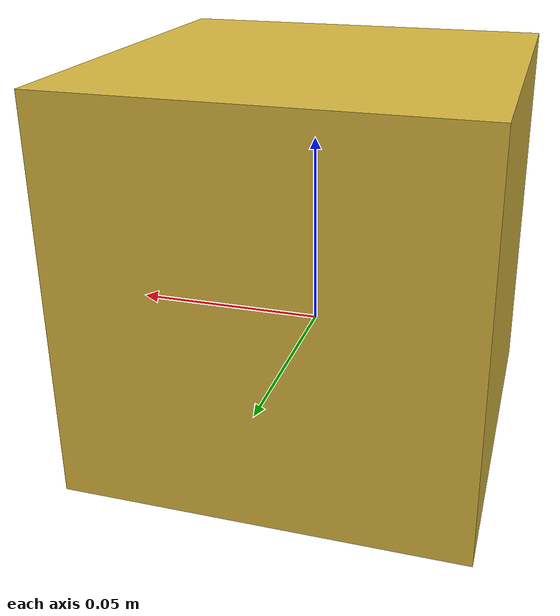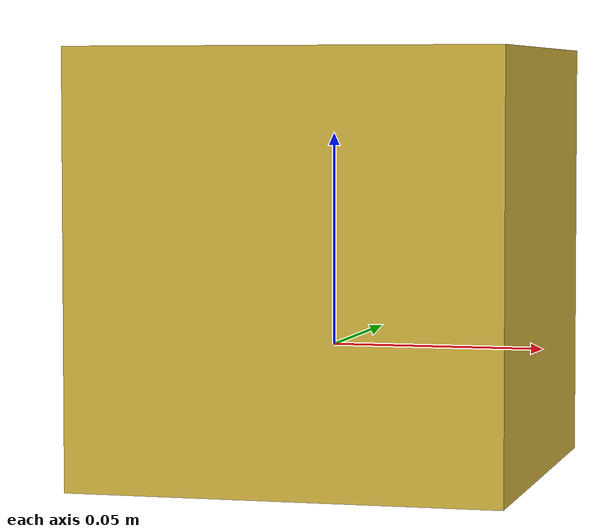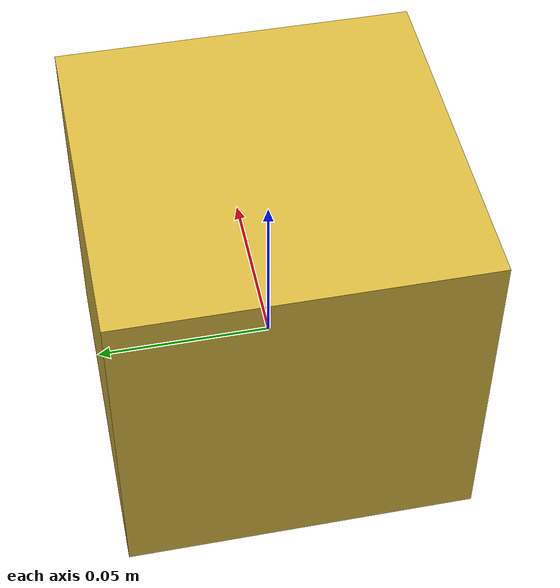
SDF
<?xml version='1.0'?>
<sdf version='1.9'>
  <model name='parcel0'>
   <static>false</static>
    <!-- Add a base link (can be minimal) -->
    <link name='base_link'>
      <inertial>
        <mass>0.001</mass>
        <inertia>
          <ixx>1e-9</ixx>
          <ixy>0</ixy>
          <ixz>0</ixz>
          <iyy>1e-9</iyy>
          <iyz>0</iyz>
          <izz>1e-9</izz>
        </inertia>
      </inertial>
      <!-- Optional: Add a small visual/collision for the base if needed -->
    </link>

    <link name='link'>
    <pose>0.0 0.0 0.02 0.0 0.0 0</pose>
      <!-- Correct physical properties for 0.1m x 0.1m x 0.1m cube with mass 0.1kg -->
      <inertial>
        <mass>0.2</mass>
        <inertia>
          <!-- For a cube: I = (1/12) * m * (a² + b²) where a,b are the other two dimensions -->
          <!-- For 0.1m cube: Ixx = Iyy = Izz = (1/12) * 0.1 * (0.1² + 0.1²) = 0.000167 -->
          <ixx>0.000333</ixx>
          <ixy>0.0</ixy>
          <ixz>0.0</ixz>
          <iyy>0.000333</iyy>
          <iyz>0.0</iyz>
          <izz>0.000333</izz>
        </inertia>
      </inertial>

      <!-- 视觉表现配置 -->
      <visual name='visual'>
        <geometry>
          <box>
            <size>0.1 0.1 0.1</size>
          </box>
        </geometry>
        <material>
            <ambient>0.62 0.52 0.15 1</ambient>
            <diffuse>0.85 0.72 0.25 1</diffuse>
            <pbr>
              <metal>
                <roughness>0.45</roughness>
                <metalness>0.1</metalness>
              </metal>
            </pbr>
          </material>
      </visual>

      <!-- 碰撞属性优化 -->
      <collision name='collision'>
        <geometry>
          <box>
            <size>0.1 0.1 0.1</size>
          </box>
        </geometry>
        <max_contacts>100</max_contacts>
        <surface>
          <friction>
            <ode>
              <mu>0.8</mu>
              <mu2>0.8</mu2>
            </ode>
          </friction>
          <contact>
            <ode>
                <kp>1e3</kp>  <!-- 增加接触刚度 -->
                <kd>1e3</kd>  <!-- 调整接触阻尼 -->
            </ode>
          </contact>
        </surface>
      </collision>

      <!-- Add contact sensor to the parcel -->
      <sensor name="contact_sensor" type="contact">
        <always_on>true</always_on>
        <update_rate>30</update_rate>
        <contact>
          <collision>collision</collision>
        </contact>
        <plugin filename="libignition-gazebo-contact-system.so"
                name="ignition::gazebo::systems::Contact">
          <topic>parcel/contact</topic>
        </plugin>
        <visualize>false</visualize>
      </sensor>
    </link>

    <!-- Add a joint connecting base_link and link -->
    <joint name='link_joint' type='revolute'>
      <parent>base_link</parent>
      <child>link</child>
      <pose>0 0 0 0 0 0</pose> <!-- Pose of the joint relative to the parent link -->
      <axis>
        <xyz>0 0 1</xyz> <!-- Axis of rotation (e.g., Z-axis) -->
        <limit>
          <lower>-3.14159</lower>
          <upper>3.14159</upper>
          <effort>1.0</effort>
          <velocity>1.0</velocity>
        </limit>
        <dynamics>
          <damping>0.1</damping>
        </dynamics>
      </axis>
    </joint>
<!-- Pose Publisher Plugin (no changes needed here) -->
    <plugin filename="libignition-gazebo-pose-publisher-system.so"
          name="ignition::gazebo::systems::PosePublisher">
        <publish_model_pose>true</publish_model_pose>
        <publish_link_pose>false</publish_link_pose>
        <publish_nested_model_pose>true</publish_nested_model_pose>
        <use_pose_vector_msg>false</use_pose_vector_msg>
        <update_frequency>60</update_frequency>
        <frame>map</frame>
        <static_publisher>false</static_publisher>
        <static_update_frequency>60</static_update_frequency>
    </plugin>
  </model>
</sdf>
